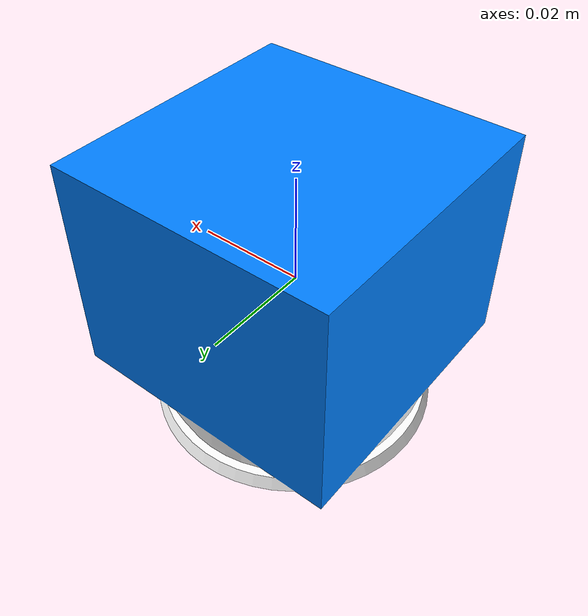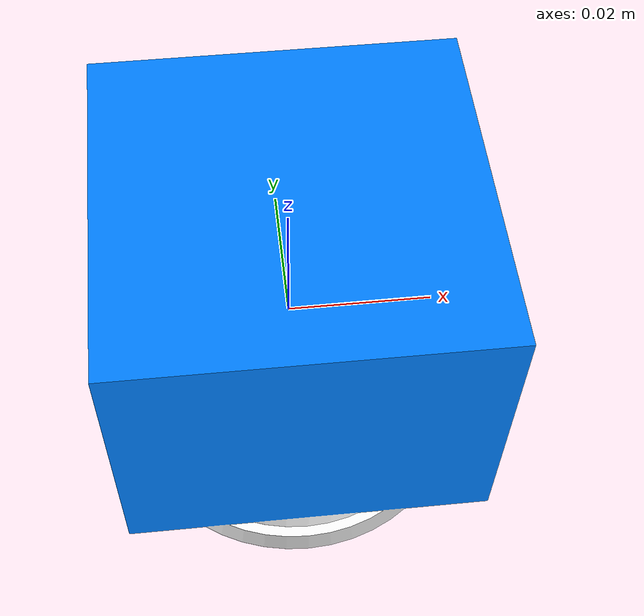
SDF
<?xml version="1.0"?>
<sdf version="1.7">
    <model name="blender_camera">
      <static>true</static>
      <link name="link">
        <visual name="visual">
          <geometry>
            <mesh>
             <uri>model://blender_camera/meshes/blender_camera.dae</uri>
             <scale>1 1 1</scale>
            </mesh>
          </geometry>
        </visual>
      </link>
    </model>
</sdf>
